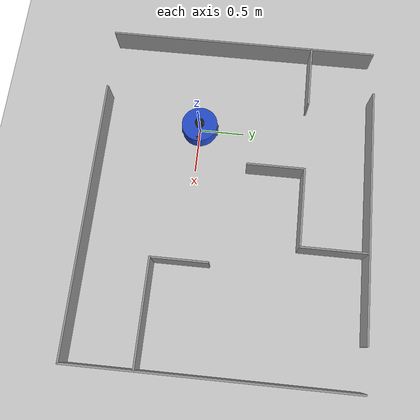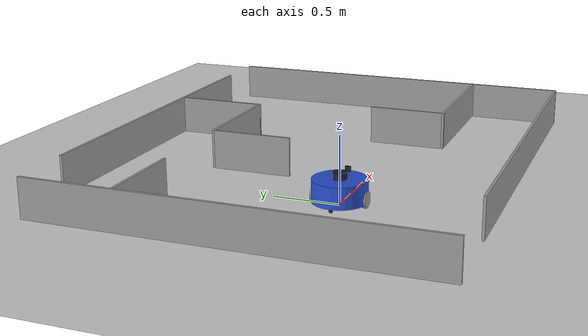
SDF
<sdf version="1.6">
 <world name="default">
  <light name="sun" type="directional">
   <pose>0 0 10 0 -0 0</pose>
   <diffuse>0.8 0.8 0.8 1</diffuse>
   <specular>0.2 0.2 0.2 1</specular>
   <attenuation>
    <range>1000</range>
    <constant>0.9</constant>
    <linear>0.01</linear>
    <quadratic>0.001</quadratic>
   </attenuation>
   <direction>-0.5 0.1 -0.9</direction>
  </light>
  <model name="ground_plane">
   <static>1</static>
   <link name="link">
    <collision name="collision">
     <geometry><plane><normal>0 0 1</normal><size>100 100</size></plane></geometry>
     <surface><friction><ode><mu>100</mu><mu2>50</mu2></ode></friction></surface>
    </collision>
    <visual name="visual">
     <cast_shadows>0</cast_shadows>
     <geometry><plane><normal>0 0 1</normal><size>100 100</size></plane></geometry>
     <material>
      <script><uri>file://media/materials/scripts/gazebo.material</uri><name>Gazebo/Grey</name></script>
     </material>
    </visual>
   </link>
  </model>
  <gravity>0 0 -9.8</gravity>
  <magnetic_field>6e-06 2.3e-05 -4.2e-05</magnetic_field>
  <atmosphere type="adiabatic"/>
  <physics name="default_physics" default="0" type="ode">
   <max_step_size>0.001</max_step_size>
   <real_time_factor>1</real_time_factor>
   <real_time_update_rate>1000</real_time_update_rate>
  </physics>
  <scene><ambient>0.4 0.4 0.4 1</ambient><background>0.7 0.7 0.7 1</background><shadows>1</shadows></scene>
  <spherical_coordinates>
   <surface_model>EARTH_WGS84</surface_model>
   <latitude_deg>0</latitude_deg>
   <longitude_deg>0</longitude_deg>
   <elevation>0</elevation>
   <heading_deg>0</heading_deg>
  </spherical_coordinates>
  <model name="mrobot">
   <link name="base_footprint">
    <inertial>
     <pose>0.000842 0 0.111015 0 -0 0</pose>
     <mass>20.2</mass>
     <inertia>
      <ixx>0.264748</ixx>
      <ixy>0</ixy>
      <ixz>-0.00168275</ixz>
      <iyy>0.267624</iyy>
      <iyz>0</iyz>
      <izz>0.422876</izz>
     </inertia>
    </inertial>
    <collision name="base_footprint_fixed_joint_lump__base_link_collision">
     <pose>0 0 0.11 0 -0 0</pose>
     <geometry><cylinder><length>0.16</length><radius>0.2</radius></cylinder></geometry>
    </collision>
    <collision name="base_footprint_fixed_joint_lump__camera_link_collision_1">
     <pose>0.17 0 0.21 0 -0 0</pose>
     <geometry><box><size>0.01 0.04 0.04</size></box></geometry>
    </collision>
    <collision name="base_footprint_fixed_joint_lump__laser_link_collision_2">
     <pose>0 0 0.215 0 -0 0</pose>
     <geometry><cylinder><length>0.06</length><radius>0.05</radius></cylinder></geometry>
    </collision>
    <visual name="base_footprint_visual">
     <geometry><box><size>0.001 0.001 0.001</size></box></geometry>
     <material><script><uri>__default__</uri><name>__default__</name></script></material>
    </visual>
    <visual name="base_footprint_fixed_joint_lump__base_link_visual_1">
     <pose>0 0 0.11 0 -0 0</pose>
     <geometry><cylinder><length>0.16</length><radius>0.2</radius></cylinder></geometry>
     <material>
      <script><name>Gazebo/Blue</name><uri>file://media/materials/scripts/gazebo.material</uri></script>
     </material>
    </visual>
    <visual name="base_footprint_fixed_joint_lump__camera_link_visual_2">
     <pose>0.17 0 0.21 0 -0 0</pose>
     <geometry><box><size>0.01 0.04 0.04</size></box></geometry>
     <material>
      <script><name>Gazebo/Black</name><uri>file://media/materials/scripts/gazebo.material</uri></script>
     </material>
    </visual>
    <visual name="base_footprint_fixed_joint_lump__laser_link_visual_3">
     <pose>0 0 0.215 0 -0 0</pose>
     <geometry><cylinder><length>0.05</length><radius>0.05</radius></cylinder></geometry>
     <material>
      <script><name>Gazebo/Black</name><uri>file://media/materials/scripts/gazebo.material</uri></script>
     </material>
    </visual>
    <sensor name="camera_node" type="camera">
     <update_rate>30</update_rate>
     <camera name="head">
      <horizontal_fov>1.39626</horizontal_fov>
      <image><width>1280</width><height>720</height><format>R8G8B8</format></image>
      <clip><near>0.02</near><far>300</far></clip>
      <noise><type>gaussian</type><mean>0</mean><stddev>0.007</stddev></noise>
     </camera>
     <plugin name="gazebo_camera" filename="libgazebo_ros_camera.so">
      <alwaysOn>1</alwaysOn>
      <updateRate>0.0</updateRate>
      <cameraName>/camera</cameraName>
      <imageTopicName>image_raw</imageTopicName>
      <cameraInfoTopicName>camera_info</cameraInfoTopicName>
      <frameName>camera_link</frameName>
      <hackBaseline>0.07</hackBaseline>
      <distortionK1>0.0</distortionK1>
      <distortionK2>0.0</distortionK2>
      <distortionK3>0.0</distortionK3>
      <distortionT1>0.0</distortionT1>
      <distortionT2>0.0</distortionT2>
      <robotNamespace>/</robotNamespace>
     </plugin>
     <pose>0.17 0 0.21 0 -0 0</pose>
    </sensor>
    <sensor name="rplidar" type="ray">
     <visualize>0</visualize>
     <update_rate>5.5</update_rate>
     <ray>
      <scan>
       <horizontal>
        <samples>360</samples>
        <resolution>1</resolution>
        <min_angle>-3</min_angle>
        <max_angle>3</max_angle>
       </horizontal>
       <vertical><samples>1</samples><min_angle>0</min_angle><max_angle>0</max_angle></vertical>
      </scan>
      <range><min>0.1</min><max>6</max><resolution>0.01</resolution></range>
      <noise><type>gaussian</type><mean>0</mean><stddev>0.01</stddev></noise>
     </ray>
     <plugin name="gazebo_rplidar" filename="libgazebo_ros_laser.so">
      <topicName>/scan</topicName>
      <frameName>laser_link</frameName>
      <robotNamespace>/</robotNamespace>
     </plugin>
     <pose>0 0 0.215 0 -0 0</pose>
    </sensor>
   </link>
   <link name="back_caster_link">
    <pose>0.18 0 0.015 0 -0 0</pose>
    <inertial>
     <mass>0.5</mass>
     <inertia><ixx>4.5e-05</ixx><ixy>0</ixy><ixz>0</ixz><iyy>4.5e-05</iyy><iyz>0</iyz><izz>4.5e-05</izz></inertia>
    </inertial>
    <collision name="back_caster_link_collision">
     <geometry><sphere><radius>0.015</radius></sphere></geometry>
    </collision>
    <visual name="back_caster_link_visual">
     <geometry><sphere><radius>0.015</radius></sphere></geometry>
     <material>
      <script><name>Gazebo/Black</name><uri>file://media/materials/scripts/gazebo.material</uri></script>
     </material>
    </visual>
   </link>
   <joint name="back_caster_joint" type="revolute">
    <child>back_caster_link</child>
    <parent>base_footprint</parent>
    <axis>
     <xyz>0 1 0</xyz>
     <limit><lower>-1e+16</lower><upper>1e+16</upper></limit>
     <dynamics><spring_reference>0</spring_reference><spring_stiffness>0</spring_stiffness></dynamics>
     <use_parent_model_frame>1</use_parent_model_frame>
    </axis>
   </joint>
   <link name="front_caster_link">
    <pose>-0.18 0 0.015 0 -0 0</pose>
    <inertial>
     <mass>0.5</mass>
     <inertia><ixx>4.5e-05</ixx><ixy>0</ixy><ixz>0</ixz><iyy>4.5e-05</iyy><iyz>0</iyz><izz>4.5e-05</izz></inertia>
    </inertial>
    <collision name="front_caster_link_collision">
     <geometry><sphere><radius>0.015</radius></sphere></geometry>
    </collision>
    <visual name="front_caster_link_visual">
     <geometry><sphere><radius>0.015</radius></sphere></geometry>
     <material>
      <script><name>Gazebo/Black</name><uri>file://media/materials/scripts/gazebo.material</uri></script>
     </material>
    </visual>
   </link>
   <joint name="front_caster_joint" type="revolute">
    <child>front_caster_link</child>
    <parent>base_footprint</parent>
    <axis>
     <xyz>0 1 0</xyz>
     <limit><lower>-1e+16</lower><upper>1e+16</upper></limit>
     <dynamics><spring_reference>0</spring_reference><spring_stiffness>0</spring_stiffness></dynamics>
     <use_parent_model_frame>1</use_parent_model_frame>
    </axis>
   </joint>
   <link name="left_wheel_link">
    <pose>0 -0.19 0.06 0 -0 0</pose>
    <inertial>
     <mass>2</mass>
     <inertia>
      <ixx>0.00190417</ixx>
      <ixy>0</ixy>
      <ixz>0</ixz>
      <iyy>0.00190417</iyy>
      <iyz>0</iyz>
      <izz>0.0036</izz>
     </inertia>
    </inertial>
    <collision name="left_wheel_link_collision">
     <pose>0 0 0 1.5708 -0 0</pose>
     <geometry><cylinder><length>0.025</length><radius>0.06</radius></cylinder></geometry>
    </collision>
    <visual name="left_wheel_link_visual">
     <pose>0 0 0 1.5708 -0 0</pose>
     <geometry><cylinder><length>0.025</length><radius>0.06</radius></cylinder></geometry>
     <material>
      <script><name>Gazebo/Gray</name><uri>file://media/materials/scripts/gazebo.material</uri></script>
     </material>
    </visual>
   </link>
   <joint name="left_wheel_joint" type="revolute">
    <child>left_wheel_link</child>
    <parent>base_footprint</parent>
    <axis>
     <xyz>0 1 0</xyz>
     <limit><lower>-1e+16</lower><upper>1e+16</upper></limit>
     <dynamics><spring_reference>0</spring_reference><spring_stiffness>0</spring_stiffness></dynamics>
     <use_parent_model_frame>1</use_parent_model_frame>
    </axis>
   </joint>
   <link name="right_wheel_link">
    <pose>0 0.19 0.06 0 -0 0</pose>
    <inertial>
     <mass>2</mass>
     <inertia>
      <ixx>0.00190417</ixx>
      <ixy>0</ixy>
      <ixz>0</ixz>
      <iyy>0.00190417</iyy>
      <iyz>0</iyz>
      <izz>0.0036</izz>
     </inertia>
    </inertial>
    <collision name="right_wheel_link_collision">
     <pose>0 0 0 1.5708 -0 0</pose>
     <geometry><cylinder><length>0.025</length><radius>0.06</radius></cylinder></geometry>
    </collision>
    <visual name="right_wheel_link_visual">
     <pose>0 0 0 1.5708 -0 0</pose>
     <geometry><cylinder><length>0.025</length><radius>0.06</radius></cylinder></geometry>
     <material>
      <script><name>Gazebo/Gray</name><uri>file://media/materials/scripts/gazebo.material</uri></script>
     </material>
    </visual>
   </link>
   <joint name="right_wheel_joint" type="revolute">
    <child>right_wheel_link</child>
    <parent>base_footprint</parent>
    <axis>
     <xyz>0 1 0</xyz>
     <limit><lower>-1e+16</lower><upper>1e+16</upper></limit>
     <dynamics><spring_reference>0</spring_reference><spring_stiffness>0</spring_stiffness></dynamics>
     <use_parent_model_frame>1</use_parent_model_frame>
    </axis>
   </joint>
   <static>0</static>
   <plugin name="differential_drive_controller" filename="libgazebo_ros_diff_drive.so">
    <rosDebugLevel>Debug</rosDebugLevel>
    <publishWheelTF>1</publishWheelTF>
    <robotNamespace>/</robotNamespace>
    <publishTf>1</publishTf>
    <publishWheelJointState>1</publishWheelJointState>
    <alwaysOn>1</alwaysOn>
    <updateRate>100.0</updateRate>
    <legacyMode>1</legacyMode>
    <leftJoint>left_wheel_joint</leftJoint>
    <rightJoint>right_wheel_joint</rightJoint>
    <wheelSeparation>0.38</wheelSeparation>
    <wheelDiameter>0.12</wheelDiameter>
    <broadcastTF>1</broadcastTF>
    <wheelTorque>30</wheelTorque>
    <wheelAcceleration>1.8</wheelAcceleration>
    <commandTopic>cmd_vel</commandTopic>
    <odometryFrame>odom</odometryFrame>
    <odometryTopic>odom</odometryTopic>
    <robotBaseFrame>base_footprint</robotBaseFrame>
   </plugin>
   <pose>3.6e-05 0.000158 0 0 0 -1.3e-05</pose>
  </model>
  <model name="maze">
   <pose>0.836518 0.409898 0 0 -0 0</pose>
   <link name="Wall_0">
    <collision name="Wall_0_Collision">
     <geometry><box><size>2.99 0.02 0.3</size></box></geometry>
     <pose>0 0 0.15 0 -0 0</pose>
    </collision>
    <visual name="Wall_0_Visual">
     <pose>0 0 0.15 0 -0 0</pose>
     <geometry><box><size>2.99 0.02 0.3</size></box></geometry>
     <material>
      <script><uri>file://media/materials/scripts/gazebo.material</uri><name>Gazebo/Grey</name></script>
      <ambient>1 1 1 1</ambient>
     </material>
     <meta><layer>0</layer></meta>
    </visual>
    <pose>-1.83874 -0.009599 0 0 -0 1.5708</pose>
   </link>
   <link name="Wall_11">
    <collision name="Wall_11_Collision">
     <geometry><box><size>0.72 0.02 0.3</size></box></geometry>
     <pose>0 0 0.15 0 -0 0</pose>
    </collision>
    <visual name="Wall_11_Visual">
     <pose>0 0 0.15 0 -0 0</pose>
     <geometry><box><size>0.72 0.02 0.3</size></box></geometry>
     <material>
      <script><uri>file://media/materials/scripts/gazebo.material</uri><name>Gazebo/Grey</name></script>
      <ambient>1 1 1 1</ambient>
     </material>
     <meta><layer>0</layer></meta>
    </visual>
    <pose>0.472633 1.1306 0 0 -0 1.5708</pose>
   </link>
   <link name="Wall_14">
    <collision name="Wall_14_Collision">
     <geometry><box><size>0.62 0.02 0.3</size></box></geometry>
     <pose>0 0 0.15 0 -0 0</pose>
    </collision>
    <visual name="Wall_14_Visual">
     <pose>0 0 0.15 0 -0 0</pose>
     <geometry><box><size>0.62 0.02 0.3</size></box></geometry>
     <material>
      <script><uri>file://media/materials/scripts/gazebo.material</uri><name>Gazebo/Grey</name></script>
      <ambient>1 1 1 1</ambient>
     </material>
     <meta><layer>0</layer></meta>
    </visual>
    <pose>-0.37865 0.463317 0 0 -0 -1.5708</pose>
   </link>
   <link name="Wall_16">
    <collision name="Wall_16_Collision">
     <geometry><box><size>2.99 0.02 0.3</size></box></geometry>
     <pose>0 0 0.15 0 -0 0</pose>
    </collision>
    <visual name="Wall_16_Visual">
     <pose>0 0 0.15 0 -0 0</pose>
     <geometry><box><size>2.99 0.02 0.3</size></box></geometry>
     <material>
      <script><uri>file://media/materials/scripts/gazebo.material</uri><name>Gazebo/Grey</name></script>
      <ambient>1 1 1 1</ambient>
     </material>
     <meta><layer>0</layer></meta>
    </visual>
    <pose>0.339633 -1.4804 0 0 -0 3.14159</pose>
   </link>
   <link name="Wall_18">
    <collision name="Wall_18_Collision">
     <geometry><box><size>1.12 0.02 0.3</size></box></geometry>
     <pose>0 0 0.15 0 -0 0</pose>
    </collision>
    <visual name="Wall_18_Visual">
     <pose>0 0 0.15 0 -0 0</pose>
     <geometry><box><size>1.12 0.02 0.3</size></box></geometry>
     <material>
      <script><uri>file://media/materials/scripts/gazebo.material</uri><name>Gazebo/Grey</name></script>
      <ambient>1 1 1 1</ambient>
     </material>
     <meta><layer>0</layer></meta>
    </visual>
    <pose>1.27463 -0.7414 0 0 -0 3.14159</pose>
   </link>
   <link name="Wall_2">
    <collision name="Wall_2_Collision">
     <geometry><box><size>0.69 0.02 0.3</size></box></geometry>
     <pose>0 0 0.15 0 -0 0</pose>
    </collision>
    <visual name="Wall_2_Visual">
     <pose>0 0 0.15 0 -0 0</pose>
     <geometry><box><size>0.69 0.02 0.3</size></box></geometry>
     <material>
      <script><uri>file://media/materials/scripts/gazebo.material</uri><name>Gazebo/Grey</name></script>
      <ambient>1 1 1 1</ambient>
     </material>
     <meta><layer>0</layer></meta>
    </visual>
    <pose>-1.49337 0.7766 0 0 -0 0</pose>
   </link>
   <link name="Wall_20">
    <collision name="Wall_20_Collision">
     <geometry><box><size>0.62 0.02 0.3</size></box></geometry>
     <pose>0 0 0.15 0 -0 0</pose>
    </collision>
    <visual name="Wall_20_Visual">
     <pose>0 0 0.15 0 -0 0</pose>
     <geometry><box><size>0.62 0.02 0.3</size></box></geometry>
     <material>
      <script><uri>file://media/materials/scripts/gazebo.material</uri><name>Gazebo/Grey</name></script>
      <ambient>1 1 1 1</ambient>
     </material>
     <meta><layer>0</layer></meta>
    </visual>
    <pose>0.724633 -0.4414 0 0 -0 1.5708</pose>
   </link>
   <link name="Wall_4">
    <collision name="Wall_4_Collision">
     <geometry><box><size>2.74 0.02 0.3</size></box></geometry>
     <pose>0 0 0.15 0 -0 0</pose>
    </collision>
    <visual name="Wall_4_Visual">
     <pose>0 0 0.15 0 -0 0</pose>
     <geometry><box><size>2.74 0.02 0.3</size></box></geometry>
     <material>
      <script><uri>file://media/materials/scripts/gazebo.material</uri><name>Gazebo/Grey</name></script>
      <ambient>1 1 1 1</ambient>
     </material>
     <meta><layer>0</layer></meta>
    </visual>
    <pose>0.025633 1.4946 0 0 -0 0</pose>
   </link>
   <link name="Wall_6">
    <collision name="Wall_6_Collision">
     <geometry><box><size>2.99 0.02 0.3</size></box></geometry>
     <pose>0 0 0.15 0 -0 0</pose>
    </collision>
    <visual name="Wall_6_Visual">
     <pose>0 0 0.15 0 -0 0</pose>
     <geometry><box><size>2.99 0.02 0.3</size></box></geometry>
     <material>
      <script><uri>file://media/materials/scripts/gazebo.material</uri><name>Gazebo/Grey</name></script>
      <ambient>1 1 1 1</ambient>
     </material>
     <meta><layer>0</layer></meta>
    </visual>
    <pose>1.83874 0.004271 0 0 -0 -1.5708</pose>
   </link>
   <link name="Wall_9">
    <collision name="Wall_9_Collision">
     <geometry><box><size>0.87 0.02 0.3</size></box></geometry>
     <pose>0 0 0.15 0 -0 0</pose>
    </collision>
    <visual name="Wall_9_Visual">
     <pose>0 0 0.15 0 -0 0</pose>
     <geometry><box><size>0.87 0.02 0.3</size></box></geometry>
     <material>
      <script><uri>file://media/materials/scripts/gazebo.material</uri><name>Gazebo/Grey</name></script>
      <ambient>1 1 1 1</ambient>
     </material>
     <meta><layer>0</layer></meta>
    </visual>
    <pose>0.047633 0.7806 0 0 -0 0</pose>
   </link>
   <static>1</static>
  </model>
 </world>
</sdf>
